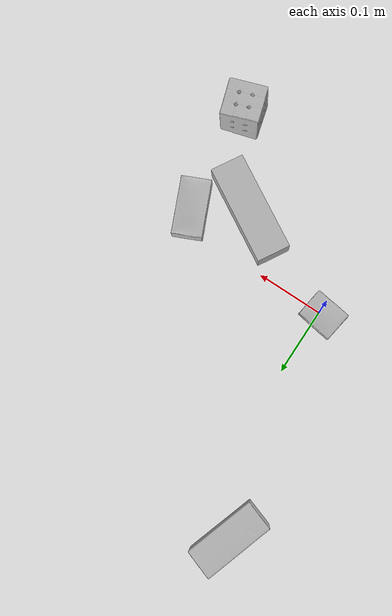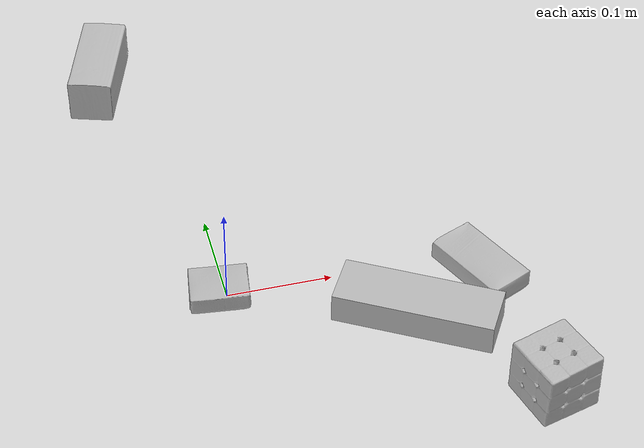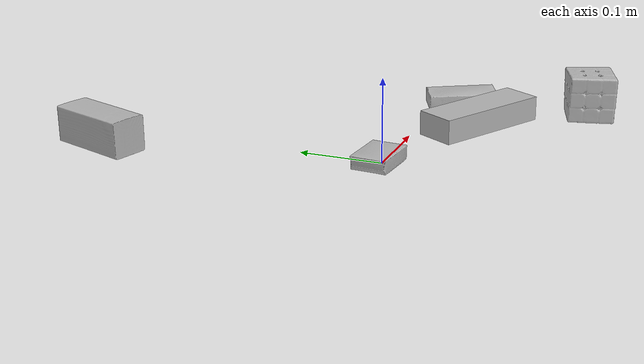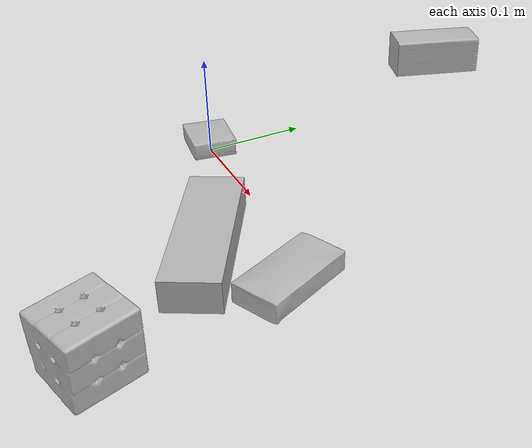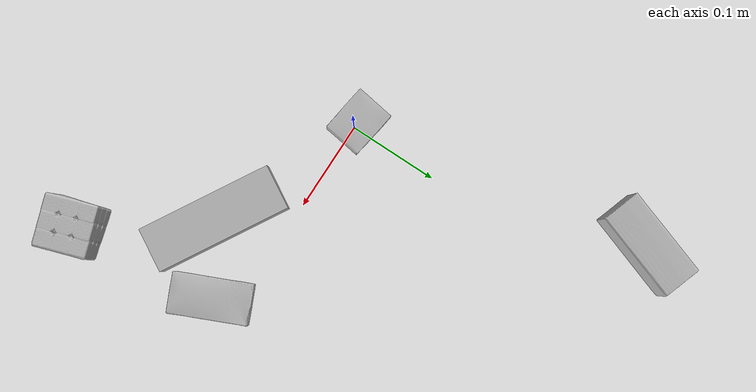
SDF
<sdf version="1.4">
  <world name="default">
    <light name="light1" type="point">
      <pose>0 0 1 0 0 0</pose>
      <diffuse>3 3 3 1</diffuse>
      <specular>3 3 3 1</specular>
    </light>
    <light name="light2" type="point">
      <pose>0 0.5 2 0 0 0</pose>
      <diffuse>1 1 1 1</diffuse>
      <specular>1 1 1 1</specular>
    </light>
    <light name="light3" type="point">
      <pose>0 0.5 2 0 0 0</pose>
      <diffuse>3 3 3 1</diffuse>
      <specular>3 3 3 1</specular>
    </light>
    <scene>
      <ambient>0.7 0.7 0.7</ambient>
    </scene>
    <model name="box1">
      <link name="link_box1">
        <collision name="default">
          <geometry>
            <mesh>
              <uri>model://wood_block/collision_meshes/collision.obj</uri>
              <scale>0.5 0.5 0.5</scale>
            </mesh>
          </geometry>
          <surface>
            <friction>
              <ode>
                <mu>0.5</mu>
                <mu2>0.5</mu2>
              </ode>
            </friction>
          <contact>
        <ode>
            <max_vel>0</max_vel>
            <min_depth>0.0001</min_depth>
            <kp>1e8</kp>
        </ode>
    </contact></surface>
        </collision>
        <visual name="default">
          <geometry>
            <mesh>
              <uri>model://wood_block/visual_meshes/visual.dae</uri>
              <scale>0.5 0.5 0.5</scale>
            </mesh>
          </geometry>
        </visual>
        <inertial>
          <mass>0.21249504387378693</mass>
          <pose>-2.906657528001233e-06 -0.00028540470520965755 0.00013204290007706732 -0.05220867383734612 -0.005192696375656893 -0.006861378651330705</pose>
          <inertia>
            <ixx>7.108762e-05</ixx>
            <iyy>0.00022456584</iyy>
            <izz>0.00022372584</izz>
            <ixy>0</ixy>
            <ixz>0</ixz>
            <iyz>0</iyz>
          </inertia>
        </inertial>
      </link>
      <pose>-0.06283668428659439 0.3273741900920868 0.022629264742136 -0.005208612385738887 0.005718786600109176 1.2466299883239333</pose>
    </model>
    <model name="box2">
      <link name="link_box2">
        <collision name="default">
          <geometry>
            <mesh>
              <uri>model://sugar_box/collision_meshes/collision.obj</uri>
              <scale>0.5 0.5 0.5</scale>
            </mesh>
          </geometry>
          <surface>
            <friction>
              <ode>
                <mu>0.5</mu>
                <mu2>0.5</mu2>
              </ode>
            </friction>
          <contact>
        <ode>
            <max_vel>0</max_vel>
            <min_depth>0.0001</min_depth>
            <kp>1e8</kp>
        </ode>
    </contact></surface>
        </collision>
        <visual name="default">
          <geometry>
            <mesh>
              <uri>model://sugar_box/visual_meshes/visual.dae</uri>
              <scale>0.5 0.5 0.5</scale>
            </mesh>
          </geometry>
        </visual>
        <inertial>
          <mass>0.11089310050010681</mass>
          <pose>0.0005171863595023751 1.924554817378521e-05 -0.00018182402709499002 -0.0004046262999979174 0.001050663638672674 0.002615379254561693</pose>
          <inertia>
            <ixx>2.3098954e-05</ixx>
            <iyy>7.4660566e-05</iyy>
            <izz>8.9377616e-05</izz>
            <ixy>0</ixy>
            <ixz>0</ixz>
            <iyz>0</iyz>
          </inertia>
        </inertial>
      </link>
      <pose>0.23624961078166962 -0.026528866961598396 0.011399301700294018 0.0007754923486642544 -0.02343259644489104 -1.1585499652372113</pose>
    </model>
    <model name="box3">
      <link name="link_box3">
        <collision name="default">
          <geometry>
            <mesh>
              <uri>model://jenga/collision_meshes/collision.obj</uri>
              <scale>1.0 1.0 1.0</scale>
            </mesh>
          </geometry>
          <surface>
            <friction>
              <ode>
                <mu>0.5</mu>
                <mu2>0.5</mu2>
              </ode>
            </friction>
          <contact>
        <ode>
            <max_vel>0</max_vel>
            <min_depth>0.0001</min_depth>
            <kp>1e8</kp>
        </ode>
    </contact></surface>
        </collision>
        <visual name="default">
          <geometry>
            <mesh>
              <uri>model://jenga/visual_meshes/visual.dae</uri>
              <scale>1.0 1.0 1.0</scale>
            </mesh>
          </geometry>
        </visual>
        <inertial>
          <mass>0.163609579205513</mass>
          <pose>-2.502855807051674e-07 -0.0001025000965455547 -4.0923401684267446e-05 0.0 -7.34215461761844e-07 0.0</pose>
          <inertia>
            <ixx>4.527474e-05</ixx>
            <iyy>0.00030678045</iyy>
            <izz>0.0003275142</izz>
            <ixy>0</ixy>
            <ixz>0</ixz>
            <iyz>0</iyz>
          </inertia>
        </inertial>
      </link>
      <pose>0.16330529749393463 -0.06905025243759155 0.01499999687075615 2.1129733829734697e-08 3.10656186226165e-09 2.6138171903505114</pose>
    </model>
    <model name="box4">
      <link name="link_box4">
        <collision name="default">
          <geometry>
            <mesh>
              <uri>model://rubiks_cube/collision_meshes/collision.obj</uri>
              <scale>1.0 1.0 1.0</scale>
            </mesh>
          </geometry>
          <surface>
            <friction>
              <ode>
                <mu>0.5</mu>
                <mu2>0.5</mu2>
              </ode>
            </friction>
          <contact>
        <ode>
            <max_vel>0</max_vel>
            <min_depth>0.0001</min_depth>
            <kp>1e8</kp>
        </ode>
    </contact></surface>
        </collision>
        <visual name="default">
          <geometry>
            <mesh>
              <uri>model://rubiks_cube/visual_meshes/visual.dae</uri>
              <scale>1.0 1.0 1.0</scale>
            </mesh>
          </geometry>
        </visual>
        <inertial>
          <mass>0.25540637969970703</mass>
          <pose>2.6721041649580002e-05 5.2569666877388954e-05 -7.264316082000732e-06 -0.054671713185757496 -0.09814043055608018 -0.034455401135126476</pose>
          <inertia>
            <ixx>0.00014112917</ixx>
            <iyy>0.000140471</iyy>
            <izz>0.00014229867</izz>
            <ixy>0</ixy>
            <ixz>0</ixz>
            <iyz>0</iyz>
          </inertia>
        </inertial>
      </link>
      <pose>0.2518664300441742 -0.18864156305789948 0.028678975999355316 -2.7512022253925692e-06 -1.1270032251247588e-06 0.3086058847852928</pose>
    </model>
    <model name="box5">
      <link name="link_box5">
        <collision name="default">
          <geometry>
            <mesh>
              <uri>model://pudding_box/collision_meshes/collision.obj</uri>
              <scale>0.5 0.5 0.5</scale>
            </mesh>
          </geometry>
          <surface>
            <friction>
              <ode>
                <mu>0.5</mu>
                <mu2>0.5</mu2>
              </ode>
            </friction>
          <contact>
        <ode>
            <max_vel>0</max_vel>
            <min_depth>0.0001</min_depth>
            <kp>1e8</kp>
        </ode>
    </contact></surface>
        </collision>
        <visual name="default">
          <geometry>
            <mesh>
              <uri>model://pudding_box/visual_meshes/visual.dae</uri>
              <scale>0.5 0.5 0.5</scale>
            </mesh>
          </geometry>
        </visual>
        <inertial>
          <mass>0.04848850890994072</mass>
          <pose>0.00024474109522998333 0.000403394311433658 -0.0002594413817860186 0.0052131017882315455 -0.0066037973363940366 0.020079830752013892</pose>
          <inertia>
            <ixx>1.370344e-05</ixx>
            <iyy>9.219772e-06</iyy>
            <izz>2.023671e-05</izz>
            <ixy>0</ixy>
            <ixz>0</ixz>
            <iyz>0</iyz>
          </inertia>
        </inertial>
      </link>
      <pose>-0.006773216649889946 0.0016402779147028923 0.009862901642918587 0.02234849667053074 -0.011391767092221587 -1.7183426403928812</pose>
    </model>
  <physics type="ode">
      <max_contacts>50</max_contacts>
      <ode>
        <solver>
          <type>quick</type>
          <iters>75</iters>
        </solver>
        <constraints>
          <contact_max_correcting_vel>0</contact_max_correcting_vel>
          <contact_surface_layer>0</contact_surface_layer>
        </constraints>
      </ode>
    </physics></world>
</sdf>
